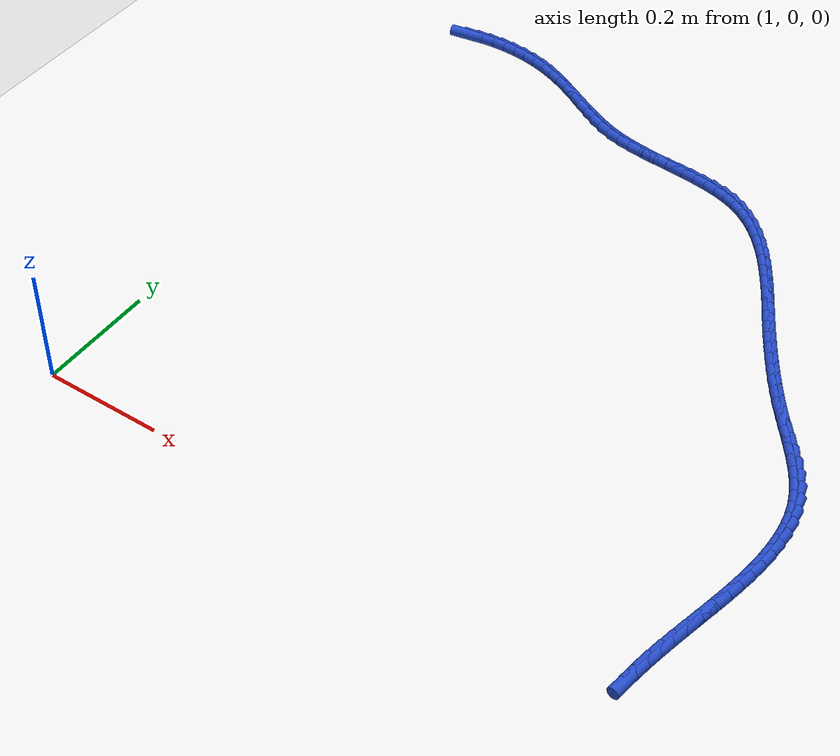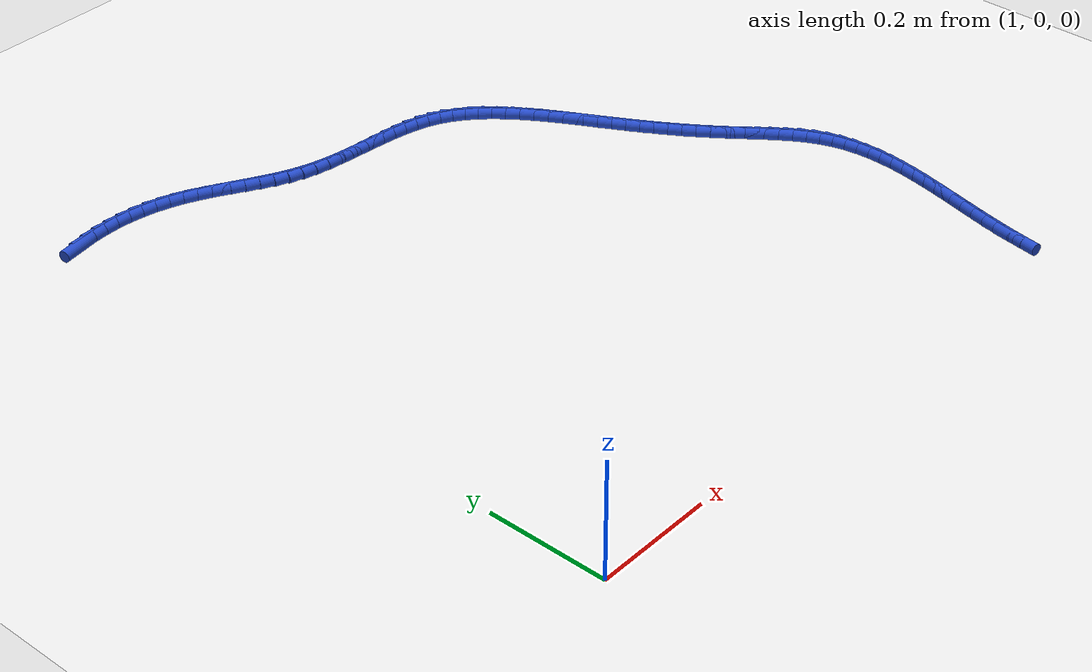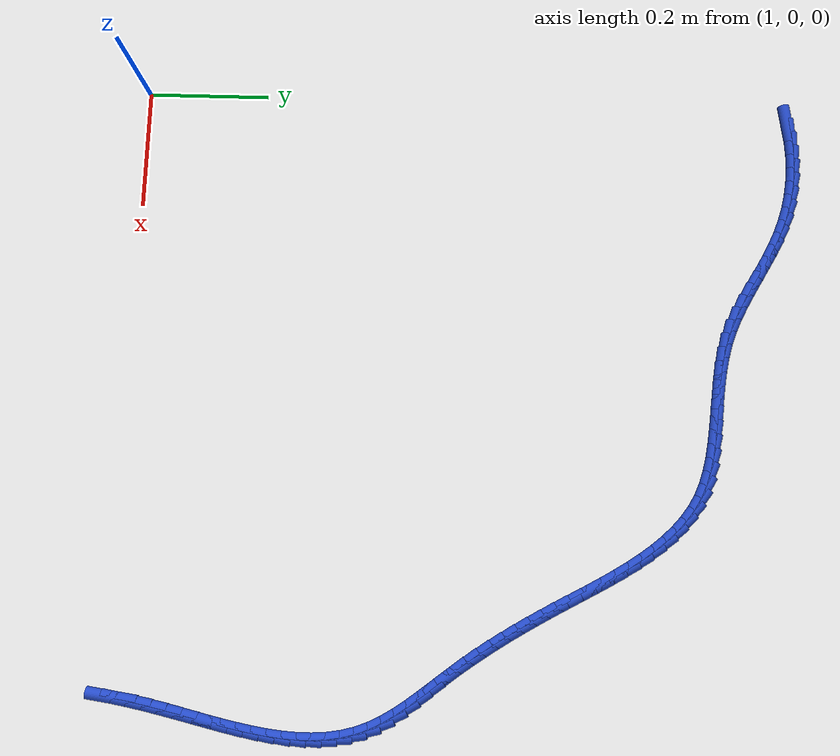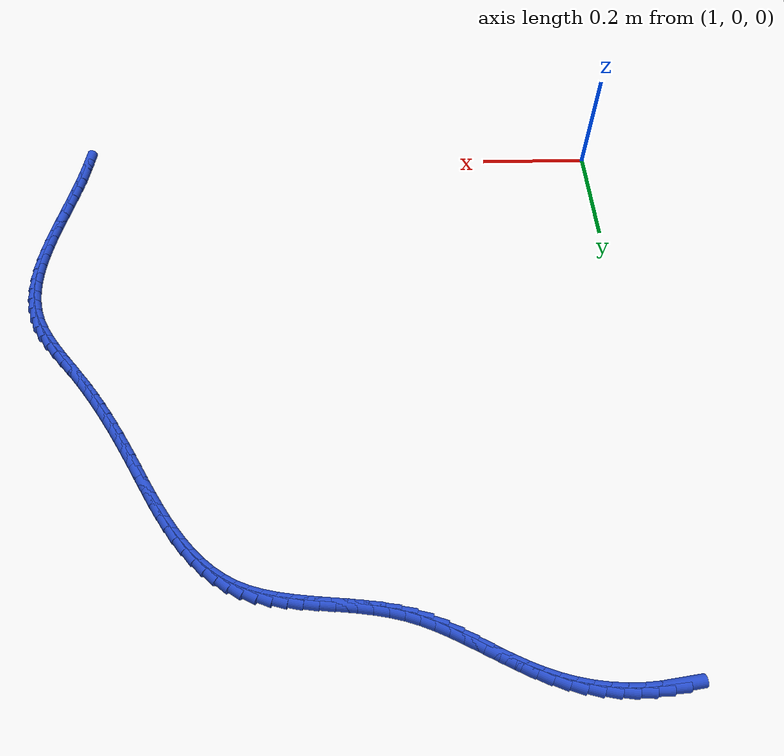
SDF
<sdf version="1.6">
 <world name="default">
  <model name="ground_plane">
   <static>1</static>
   <link name="link">
    <collision name="collision">
     <geometry><plane><normal>0 0 1</normal><size>100 100</size></plane></geometry>
     <surface><friction><ode><mu>100</mu><mu2>50</mu2></ode></friction></surface>
    </collision>
    <visual name="visual">
     <cast_shadows>0</cast_shadows>
     <geometry><plane><normal>0 0 1</normal><size>100 100</size></plane></geometry>
     <material>
      <script><uri>file://media/materials/scripts/gazebo.material</uri><name>Gazebo/WhiteGlow</name></script>
     </material>
    </visual>
   </link>
  </model>
  <model name="line">
   <link name="link_72">
    <pose>1.0402541227817694 1.0861348623821294 0.01 0 1.57 0.153829096978689</pose>
    <collision name="collision">
     <geometry><cylinder><radius>0.01</radius><length>0.08</length></cylinder></geometry>
    </collision>
    <visual name="visual">
     <material>
      <script><name>Gazebo/Blue</name><uri>file://media/materials/scripts/gazebo.material</uri></script>
     </material>
     <geometry><cylinder><radius>0.01</radius><length>0.08</length></cylinder></geometry>
    </visual>
   </link>
   <link name="link_73">
    <pose>1.0639731152185534 1.0898125885948566 0.01 0 1.57 0.07906914227122919</pose>
    <collision name="collision">
     <geometry><cylinder><radius>0.01</radius><length>0.08</length></cylinder></geometry>
    </collision>
    <visual name="visual">
     <material>
      <script><name>Gazebo/Blue</name><uri>file://media/materials/scripts/gazebo.material</uri></script>
     </material>
     <geometry><cylinder><radius>0.01</radius><length>0.08</length></cylinder></geometry>
    </visual>
   </link>
   <link name="link_74">
    <pose>1.0879583090864084 1.0917130394476604 0.01 0 1.57 0.006042839893319099</pose>
    <collision name="collision">
     <geometry><cylinder><radius>0.01</radius><length>0.08</length></cylinder></geometry>
    </collision>
    <visual name="visual">
     <material>
      <script><name>Gazebo/Blue</name><uri>file://media/materials/scripts/gazebo.material</uri></script>
     </material>
     <geometry><cylinder><radius>0.01</radius><length>0.08</length></cylinder></geometry>
    </visual>
   </link>
   <link name="link_75">
    <pose>1.1120414573615685 1.0918585718282345 0.01 0 1.57 -0.06599483840006072</pose>
    <collision name="collision">
     <geometry><cylinder><radius>0.01</radius><length>0.08</length></cylinder></geometry>
    </collision>
    <visual name="visual">
     <material>
      <script><name>Gazebo/Blue</name><uri>file://media/materials/scripts/gazebo.material</uri></script>
     </material>
     <geometry><cylinder><radius>0.01</radius><length>0.08</length></cylinder></geometry>
    </visual>
   </link>
   <link name="link_76">
    <pose>1.1360543130202665 1.090271542624271 0.01 0 1.57 -0.13780982099156985</pose>
    <collision name="collision">
     <geometry><cylinder><radius>0.01</radius><length>0.08</length></cylinder></geometry>
    </collision>
    <visual name="visual">
     <material>
      <script><name>Gazebo/Blue</name><uri>file://media/materials/scripts/gazebo.material</uri></script>
     </material>
     <geometry><cylinder><radius>0.01</radius><length>0.08</length></cylinder></geometry>
    </visual>
   </link>
   <link name="link_77">
    <pose>1.159828629038737 1.086974308723462 0.01 0 1.57 -0.2101829460826411</pose>
    <collision name="collision">
     <geometry><cylinder><radius>0.01</radius><length>0.08</length></cylinder></geometry>
    </collision>
    <visual name="visual">
     <material>
      <script><name>Gazebo/Blue</name><uri>file://media/materials/scripts/gazebo.material</uri></script>
     </material>
     <geometry><cylinder><radius>0.01</radius><length>0.08</length></cylinder></geometry>
    </visual>
   </link>
   <link name="link_78">
    <pose>1.183196158393214 1.0819892270135005 0.01 0 1.57 -0.2839057608263204</pose>
    <collision name="collision">
     <geometry><cylinder><radius>0.01</radius><length>0.08</length></cylinder></geometry>
    </collision>
    <visual name="visual">
     <material>
      <script><name>Gazebo/Blue</name><uri>file://media/materials/scripts/gazebo.material</uri></script>
     </material>
     <geometry><cylinder><radius>0.01</radius><length>0.08</length></cylinder></geometry>
    </visual>
   </link>
   <link name="link_79">
    <pose>1.20598865405993 1.075338654382079 0.01 0 1.57 -0.3580406190717034</pose>
    <collision name="collision">
     <geometry><cylinder><radius>0.01</radius><length>0.08</length></cylinder></geometry>
    </collision>
    <visual name="visual">
     <material>
      <script><name>Gazebo/Blue</name><uri>file://media/materials/scripts/gazebo.material</uri></script>
     </material>
     <geometry><cylinder><radius>0.01</radius><length>0.08</length></cylinder></geometry>
    </visual>
   </link>
   <link name="link_80">
    <pose>1.2280691721432522 1.0670768418426033 0.01 0 1.57 -0.4211189073844142</pose>
    <collision name="collision">
     <geometry><cylinder><radius>0.01</radius><length>0.08</length></cylinder></geometry>
    </collision>
    <visual name="visual">
     <material>
      <script><name>Gazebo/Blue</name><uri>file://media/materials/scripts/gazebo.material</uri></script>
     </material>
     <geometry><cylinder><radius>0.01</radius><length>0.08</length></cylinder></geometry>
    </visual>
   </link>
   <link name="link_81">
    <pose>1.2495113265857427 1.0574725735418091 0.01 0 1.57 -0.46773702625471586</pose>
    <collision name="collision">
     <geometry><cylinder><radius>0.01</radius><length>0.08</length></cylinder></geometry>
    </collision>
    <visual name="visual">
     <material>
      <script><name>Gazebo/Blue</name><uri>file://media/materials/scripts/gazebo.material</uri></script>
     </material>
     <geometry><cylinder><radius>0.01</radius><length>0.08</length></cylinder></geometry>
    </visual>
   </link>
   <link name="link_82">
    <pose>1.2704755407658477 1.046883082009273 0.01 0 1.57 -0.497673785583334</pose>
    <collision name="collision">
     <geometry><cylinder><radius>0.01</radius><length>0.08</length></cylinder></geometry>
    </collision>
    <visual name="visual">
     <material>
      <script><name>Gazebo/Blue</name><uri>file://media/materials/scripts/gazebo.material</uri></script>
     </material>
     <geometry><cylinder><radius>0.01</radius><length>0.08</length></cylinder></geometry>
    </visual>
   </link>
   <link name="link_83">
    <pose>1.2911225092737446 1.0356658761067314 0.01 0 1.57 -0.5109629152682783</pose>
    <collision name="collision">
     <geometry><cylinder><radius>0.01</radius><length>0.08</length></cylinder></geometry>
    </collision>
    <visual name="visual">
     <material>
      <script><name>Gazebo/Blue</name><uri>file://media/materials/scripts/gazebo.material</uri></script>
     </material>
     <geometry><cylinder><radius>0.01</radius><length>0.08</length></cylinder></geometry>
    </visual>
   </link>
   <link name="link_84">
    <pose>1.3116129266996104 1.0241784646959218 0.01 0 1.57 -0.5076293264700552</pose>
    <collision name="collision">
     <geometry><cylinder><radius>0.01</radius><length>0.08</length></cylinder></geometry>
    </collision>
    <visual name="visual">
     <material>
      <script><name>Gazebo/Blue</name><uri>file://media/materials/scripts/gazebo.material</uri></script>
     </material>
     <geometry><cylinder><radius>0.01</radius><length>0.08</length></cylinder></geometry>
    </visual>
   </link>
   <link name="link_85">
    <pose>1.3321074876336212 1.0127783566385806 0.01 0 1.57 -0.48757827343451365</pose>
    <collision name="collision">
     <geometry><cylinder><radius>0.01</radius><length>0.08</length></cylinder></geometry>
    </collision>
    <visual name="visual">
     <material>
      <script><name>Gazebo/Blue</name><uri>file://media/materials/scripts/gazebo.material</uri></script>
     </material>
     <geometry><cylinder><radius>0.01</radius><length>0.08</length></cylinder></geometry>
    </visual>
   </link>
   <link name="link_86">
    <pose>1.3527668866659548 1.0018230607964445 0.01 0 1.57 -0.4506217682786409</pose>
    <collision name="collision">
     <geometry><cylinder><radius>0.01</radius><length>0.08</length></cylinder></geometry>
    </collision>
    <visual name="visual">
     <material>
      <script><name>Gazebo/Blue</name><uri>file://media/materials/scripts/gazebo.material</uri></script>
     </material>
     <geometry><cylinder><radius>0.01</radius><length>0.08</length></cylinder></geometry>
    </visual>
   </link>
   <link name="link_87">
    <pose>1.373751818386788 0.9916700860312505 0.01 0 1.57 -0.3966480457385551</pose>
    <collision name="collision">
     <geometry><cylinder><radius>0.01</radius><length>0.08</length></cylinder></geometry>
    </collision>
    <visual name="visual">
     <material>
      <script><name>Gazebo/Blue</name><uri>file://media/materials/scripts/gazebo.material</uri></script>
     </material>
     <geometry><cylinder><radius>0.01</radius><length>0.08</length></cylinder></geometry>
    </visual>
   </link>
   <link name="link_88">
    <pose>1.3952229773862972 0.9826769412047351 0.01 0 1.57 -0.325944095182528</pose>
    <collision name="collision">
     <geometry><cylinder><radius>0.01</radius><length>0.08</length></cylinder></geometry>
    </collision>
    <visual name="visual">
     <material>
      <script><name>Gazebo/Blue</name><uri>file://media/materials/scripts/gazebo.material</uri></script>
     </material>
     <geometry><cylinder><radius>0.01</radius><length>0.08</length></cylinder></geometry>
    </visual>
   </link>
   <link name="link_89">
    <pose>1.4173410210244655 0.9752010563262223 0.01 0 1.57 -0.24685019395304858</pose>
    <collision name="collision">
     <geometry><cylinder><radius>0.01</radius><length>0.08</length></cylinder></geometry>
    </collision>
    <visual name="visual">
     <material>
      <script><name>Gazebo/Blue</name><uri>file://media/materials/scripts/gazebo.material</uri></script>
     </material>
     <geometry><cylinder><radius>0.01</radius><length>0.08</length></cylinder></geometry>
    </visual>
   </link>
   <link name="link_90">
    <pose>1.440192423753005 0.9694427442717521 0.01 0 1.57 -0.18250908923750309</pose>
    <collision name="collision">
     <geometry><cylinder><radius>0.01</radius><length>0.08</length></cylinder></geometry>
    </collision>
    <visual name="visual">
     <material>
      <script><name>Gazebo/Blue</name><uri>file://media/materials/scripts/gazebo.material</uri></script>
     </material>
     <geometry><cylinder><radius>0.01</radius><length>0.08</length></cylinder></geometry>
    </visual>
   </link>
   <link name="link_91">
    <pose>1.4636341711964114 0.965116267592656 0.01 0 1.57 -0.13645442018755644</pose>
    <collision name="collision">
     <geometry><cylinder><radius>0.01</radius><length>0.08</length></cylinder></geometry>
    </collision>
    <visual name="visual">
     <material>
      <script><name>Gazebo/Blue</name><uri>file://media/materials/scripts/gazebo.material</uri></script>
     </material>
     <geometry><cylinder><radius>0.01</radius><length>0.08</length></cylinder></geometry>
    </visual>
   </link>
   <link name="link_92">
    <pose>1.487479008103207 0.9618421880166028 0.01 0 1.57 -0.10768851969958602</pose>
    <collision name="collision">
     <geometry><cylinder><radius>0.01</radius><length>0.08</length></cylinder></geometry>
    </collision>
    <visual name="visual">
     <material>
      <script><name>Gazebo/Blue</name><uri>file://media/materials/scripts/gazebo.material</uri></script>
     </material>
     <geometry><cylinder><radius>0.01</radius><length>0.08</length></cylinder></geometry>
    </visual>
   </link>
   <link name="link_93">
    <pose>1.5115396792219158 0.9592410672712619 0.01 0 1.57 -0.09550236167625341</pose>
    <collision name="collision">
     <geometry><cylinder><radius>0.01</radius><length>0.08</length></cylinder></geometry>
    </collision>
    <visual name="visual">
     <material>
      <script><name>Gazebo/Blue</name><uri>file://media/materials/scripts/gazebo.material</uri></script>
     </material>
     <geometry><cylinder><radius>0.01</radius><length>0.08</length></cylinder></geometry>
    </visual>
   </link>
   <link name="link_94">
    <pose>1.5356289293010605 0.9569334670843019 0.01 0 1.57 -0.09968770600861052</pose>
    <collision name="collision">
     <geometry><cylinder><radius>0.01</radius><length>0.08</length></cylinder></geometry>
    </collision>
    <visual name="visual">
     <material>
      <script><name>Gazebo/Blue</name><uri>file://media/materials/scripts/gazebo.material</uri></script>
     </material>
     <geometry><cylinder><radius>0.01</radius><length>0.08</length></cylinder></geometry>
    </visual>
   </link>
   <link name="link_95">
    <pose>1.5595595030891651 0.9545399491833927 0.01 0 1.57 -0.1206290746074703</pose>
    <collision name="collision">
     <geometry><cylinder><radius>0.01</radius><length>0.08</length></cylinder></geometry>
    </collision>
    <visual name="visual">
     <material>
      <script><name>Gazebo/Blue</name><uri>file://media/materials/scripts/gazebo.material</uri></script>
     </material>
     <geometry><cylinder><radius>0.01</radius><length>0.08</length></cylinder></geometry>
    </visual>
   </link>
   <link name="link_96">
    <pose>1.5831441453347523 0.951681075296203 0.01 0 1.57 -0.15930808081705083</pose>
    <collision name="collision">
     <geometry><cylinder><radius>0.01</radius><length>0.08</length></cylinder></geometry>
    </collision>
    <visual name="visual">
     <material>
      <script><name>Gazebo/Blue</name><uri>file://media/materials/scripts/gazebo.material</uri></script>
     </material>
     <geometry><cylinder><radius>0.01</radius><length>0.08</length></cylinder></geometry>
    </visual>
   </link>
   <link name="link_97">
    <pose>1.6061956007863458 0.9479774071504022 0.01 0 1.57 -0.21719423526527362</pose>
    <collision name="collision">
     <geometry><cylinder><radius>0.01</radius><length>0.08</length></cylinder></geometry>
    </collision>
    <visual name="visual">
     <material>
      <script><name>Gazebo/Blue</name><uri>file://media/materials/scripts/gazebo.material</uri></script>
     </material>
     <geometry><cylinder><radius>0.01</radius><length>0.08</length></cylinder></geometry>
    </visual>
   </link>
   <link name="link_98">
    <pose>1.6285266141924686 0.9430495064736591 0.01 0 1.57 -0.2959291419163682</pose>
    <collision name="collision">
     <geometry><cylinder><radius>0.01</radius><length>0.08</length></cylinder></geometry>
    </collision>
    <visual name="visual">
     <material>
      <script><name>Gazebo/Blue</name><uri>file://media/materials/scripts/gazebo.material</uri></script>
     </material>
     <geometry><cylinder><radius>0.01</radius><length>0.08</length></cylinder></geometry>
    </visual>
   </link>
   <link name="link_99">
    <pose>1.6499499303016443 0.9365179349936434 0.01 0 1.57 -0.3966561199492416</pose>
    <collision name="collision">
     <geometry><cylinder><radius>0.01</radius><length>0.08</length></cylinder></geometry>
    </collision>
    <visual name="visual">
     <material>
      <script><name>Gazebo/Blue</name><uri>file://media/materials/scripts/gazebo.material</uri></script>
     </material>
     <geometry><cylinder><radius>0.01</radius><length>0.08</length></cylinder></geometry>
    </visual>
   </link>
   <link name="link_100">
    <pose>1.670278293862396 0.9280032544380237 0.01 0 1.57 -0.5139692183211875</pose>
    <collision name="collision">
     <geometry><cylinder><radius>0.01</radius><length>0.08</length></cylinder></geometry>
    </collision>
    <visual name="visual">
     <material>
      <script><name>Gazebo/Blue</name><uri>file://media/materials/scripts/gazebo.material</uri></script>
     </material>
     <geometry><cylinder><radius>0.01</radius><length>0.08</length></cylinder></geometry>
    </visual>
   </link>
   <link name="link_101">
    <pose>1.689371106202114 0.9172238066737255 0.01 0 1.57 -0.6248708578580492</pose>
    <collision name="collision">
     <geometry><cylinder><radius>0.01</radius><length>0.08</length></cylinder></geometry>
    </collision>
    <visual name="visual">
     <material>
      <script><name>Gazebo/Blue</name><uri>file://media/materials/scripts/gazebo.material</uri></script>
     </material>
     <geometry><cylinder><radius>0.01</radius><length>0.08</length></cylinder></geometry>
    </visual>
   </link>
   <link name="link_102">
    <pose>1.707281964471925 0.9043049178590261 0.01 0 1.57 -0.7221259078059038</pose>
    <collision name="collision">
     <geometry><cylinder><radius>0.01</radius><length>0.08</length></cylinder></geometry>
    </collision>
    <visual name="visual">
     <material>
      <script><name>Gazebo/Blue</name><uri>file://media/materials/scripts/gazebo.material</uri></script>
     </material>
     <geometry><cylinder><radius>0.01</radius><length>0.08</length></cylinder></geometry>
    </visual>
   </link>
   <link name="link_103">
    <pose>1.7241149832829792 0.8894777857012083 0.01 0 1.57 -0.8053218031197413</pose>
    <collision name="collision">
     <geometry><cylinder><radius>0.01</radius><length>0.08</length></cylinder></geometry>
    </collision>
    <visual name="visual">
     <material>
      <script><name>Gazebo/Blue</name><uri>file://media/materials/scripts/gazebo.material</uri></script>
     </material>
     <geometry><cylinder><radius>0.01</radius><length>0.08</length></cylinder></geometry>
    </visual>
   </link>
   <link name="link_104">
    <pose>1.7399742773594273 0.8729736081443802 0.01 0 1.57 -0.8750288650395213</pose>
    <collision name="collision">
     <geometry><cylinder><radius>0.01</radius><length>0.08</length></cylinder></geometry>
    </collision>
    <visual name="visual">
     <material>
      <script><name>Gazebo/Blue</name><uri>file://media/materials/scripts/gazebo.material</uri></script>
     </material>
     <geometry><cylinder><radius>0.01</radius><length>0.08</length></cylinder></geometry>
    </visual>
   </link>
   <link name="link_105">
    <pose>1.7549639614254242 0.8550235831326517 0.01 0 1.57 -0.9323003058487871</pose>
    <collision name="collision">
     <geometry><cylinder><radius>0.01</radius><length>0.08</length></cylinder></geometry>
    </collision>
    <visual name="visual">
     <material>
      <script><name>Gazebo/Blue</name><uri>file://media/materials/scripts/gazebo.material</uri></script>
     </material>
     <geometry><cylinder><radius>0.01</radius><length>0.08</length></cylinder></geometry>
    </visual>
   </link>
   <link name="link_106">
    <pose>1.7691881502051232 0.8358589086101322 0.01 0 1.57 -0.9783153644918812</pose>
    <collision name="collision">
     <geometry><cylinder><radius>0.01</radius><length>0.08</length></cylinder></geometry>
    </collision>
    <visual name="visual">
     <material>
      <script><name>Gazebo/Blue</name><uri>file://media/materials/scripts/gazebo.material</uri></script>
     </material>
     <geometry><cylinder><radius>0.01</radius><length>0.08</length></cylinder></geometry>
    </visual>
   </link>
   <link name="link_107">
    <pose>1.782750958422677 0.815710782520931 0.01 0 1.57 -1.0141672885618818</pose>
    <collision name="collision">
     <geometry><cylinder><radius>0.01</radius><length>0.08</length></cylinder></geometry>
    </collision>
    <visual name="visual">
     <material>
      <script><name>Gazebo/Blue</name><uri>file://media/materials/scripts/gazebo.material</uri></script>
     </material>
     <geometry><cylinder><radius>0.01</radius><length>0.08</length></cylinder></geometry>
    </visual>
   </link>
   <link name="link_108">
    <pose>1.7957565008022394 0.7948104028091578 0.01 0 1.57 -1.0407543531947423</pose>
    <collision name="collision">
     <geometry><cylinder><radius>0.01</radius><length>0.08</length></cylinder></geometry>
    </collision>
    <visual name="visual">
     <material>
      <script><name>Gazebo/Blue</name><uri>file://media/materials/scripts/gazebo.material</uri></script>
     </material>
     <geometry><cylinder><radius>0.01</radius><length>0.08</length></cylinder></geometry>
    </visual>
   </link>
   <link name="link_109">
    <pose>1.8083088920679635 0.773388967418921 0.01 0 1.57 -1.0587304810452551</pose>
    <collision name="collision">
     <geometry><cylinder><radius>0.01</radius><length>0.08</length></cylinder></geometry>
    </collision>
    <visual name="visual">
     <material>
      <script><name>Gazebo/Blue</name><uri>file://media/materials/scripts/gazebo.material</uri></script>
     </material>
     <geometry><cylinder><radius>0.01</radius><length>0.08</length></cylinder></geometry>
    </visual>
   </link>
   <link name="link_110">
    <pose>1.8205122469440032 0.7516776742943306 0.01 0 1.57 -1.0684837132092144</pose>
    <collision name="collision">
     <geometry><cylinder><radius>0.01</radius><length>0.08</length></cylinder></geometry>
    </collision>
    <visual name="visual">
     <material>
      <script><name>Gazebo/Blue</name><uri>file://media/materials/scripts/gazebo.material</uri></script>
     </material>
     <geometry><cylinder><radius>0.01</radius><length>0.08</length></cylinder></geometry>
    </visual>
   </link>
   <link name="link_111">
    <pose>1.8324706801545116 0.7299077213794962 0.01 0 1.57 -1.0701224405949912</pose>
    <collision name="collision">
     <geometry><cylinder><radius>0.01</radius><length>0.08</length></cylinder></geometry>
    </collision>
    <visual name="visual">
     <material>
      <script><name>Gazebo/Blue</name><uri>file://media/materials/scripts/gazebo.material</uri></script>
     </material>
     <geometry><cylinder><radius>0.01</radius><length>0.08</length></cylinder></geometry>
    </visual>
   </link>
   <link name="link_112">
    <pose>1.8442883064236413 0.7083103066185266 0.01 0 1.57 -1.0635740772984816</pose>
    <collision name="collision">
     <geometry><cylinder><radius>0.01</radius><length>0.08</length></cylinder></geometry>
    </collision>
    <visual name="visual">
     <material>
      <script><name>Gazebo/Blue</name><uri>file://media/materials/scripts/gazebo.material</uri></script>
     </material>
     <geometry><cylinder><radius>0.01</radius><length>0.08</length></cylinder></geometry>
    </visual>
   </link>
   <link name="link_113">
    <pose>1.8560686676197111 0.68711183600017 0.01 0 1.57 -1.0516775150960562</pose>
    <collision name="collision">
     <geometry><cylinder><radius>0.01</radius><length>0.08</length></cylinder></geometry>
    </collision>
    <visual name="visual">
     <material>
      <script><name>Gazebo/Blue</name><uri>file://media/materials/scripts/gazebo.material</uri></script>
     </material>
     <geometry><cylinder><radius>0.01</radius><length>0.08</length></cylinder></geometry>
    </visual>
   </link>
   <link name="link_114">
    <pose>1.8678995065158668 0.6664065556327713 0.01 0 1.57 -1.037901577808438</pose>
    <collision name="collision">
     <geometry><cylinder><radius>0.01</radius><length>0.08</length></cylinder></geometry>
    </collision>
    <visual name="visual">
     <material>
      <script><name>Gazebo/Blue</name><uri>file://media/materials/scripts/gazebo.material</uri></script>
     </material>
     <geometry><cylinder><radius>0.01</radius><length>0.08</length></cylinder></geometry>
    </visual>
   </link>
   <link name="link_115">
    <pose>1.8798511553269253 0.6461430718090917 0.01 0 1.57 -1.02251602451178</pose>
    <collision name="collision">
     <geometry><cylinder><radius>0.01</radius><length>0.08</length></cylinder></geometry>
    </collision>
    <visual name="visual">
     <material>
      <script><name>Gazebo/Blue</name><uri>file://media/materials/scripts/gazebo.material</uri></script>
     </material>
     <geometry><cylinder><radius>0.01</radius><length>0.08</length></cylinder></geometry>
    </visual>
   </link>
   <link name="link_116">
    <pose>1.8919930501658861 0.626262494904721 0.01 0 1.57 -1.0056521290560043</pose>
    <collision name="collision">
     <geometry><cylinder><radius>0.01</radius><length>0.08</length></cylinder></geometry>
    </collision>
    <visual name="visual">
     <material>
      <script><name>Gazebo/Blue</name><uri>file://media/materials/scripts/gazebo.material</uri></script>
     </material>
     <geometry><cylinder><radius>0.01</radius><length>0.08</length></cylinder></geometry>
    </visual>
   </link>
   <link name="link_117">
    <pose>1.9043946271457508 0.6067059352952503 0.01 0 1.57 -0.9874828945962667</pose>
    <collision name="collision">
     <geometry><cylinder><radius>0.01</radius><length>0.08</length></cylinder></geometry>
    </collision>
    <visual name="visual">
     <material>
      <script><name>Gazebo/Blue</name><uri>file://media/materials/scripts/gazebo.material</uri></script>
     </material>
     <geometry><cylinder><radius>0.01</radius><length>0.08</length></cylinder></geometry>
    </visual>
   </link>
   <link name="link_118">
    <pose>1.9171253223795184 0.5874145033562691 0.01 0 1.57 -0.968218039811756</pose>
    <collision name="collision">
     <geometry><cylinder><radius>0.01</radius><length>0.08</length></cylinder></geometry>
    </collision>
    <visual name="visual">
     <material>
      <script><name>Gazebo/Blue</name><uri>file://media/materials/scripts/gazebo.material</uri></script>
     </material>
     <geometry><cylinder><radius>0.01</radius><length>0.08</length></cylinder></geometry>
    </visual>
   </link>
   <link name="link_119">
    <pose>1.93025457198019 0.5683293094633681 0.01 0 1.57 -0.9480963322966613</pose>
    <collision name="collision">
     <geometry><cylinder><radius>0.01</radius><length>0.08</length></cylinder></geometry>
    </collision>
    <visual name="visual">
     <material>
      <script><name>Gazebo/Blue</name><uri>file://media/materials/scripts/gazebo.material</uri></script>
     </material>
     <geometry><cylinder><radius>0.01</radius><length>0.08</length></cylinder></geometry>
    </visual>
   </link>
   <link name="link_120">
    <pose>1.9438518120607657 0.5493914639921378 0.01 0 1.57 -0.9273928694387152</pose>
    <collision name="collision">
     <geometry><cylinder><radius>0.01</radius><length>0.08</length></cylinder></geometry>
    </collision>
    <visual name="visual">
     <material>
      <script><name>Gazebo/Blue</name><uri>file://media/materials/scripts/gazebo.material</uri></script>
     </material>
     <geometry><cylinder><radius>0.01</radius><length>0.08</length></cylinder></geometry>
    </visual>
   </link>
   <link name="link_121">
    <pose>1.9579860098498527 0.5305420324831827 0.01 0 1.57 -0.9115209345039593</pose>
    <collision name="collision">
     <geometry><cylinder><radius>0.01</radius><length>0.08</length></cylinder></geometry>
    </collision>
    <visual name="visual">
     <material>
      <script><name>Gazebo/Blue</name><uri>file://media/materials/scripts/gazebo.material</uri></script>
     </material>
     <geometry><cylinder><radius>0.01</radius><length>0.08</length></cylinder></geometry>
    </visual>
   </link>
   <link name="link_122">
    <pose>1.9725811699343685 0.5117082190690324 0.01 0 1.57 -0.9126627697735809</pose>
    <collision name="collision">
     <geometry><cylinder><radius>0.01</radius><length>0.08</length></cylinder></geometry>
    </collision>
    <visual name="visual">
     <material>
      <script><name>Gazebo/Blue</name><uri>file://media/materials/scripts/gazebo.material</uri></script>
     </material>
     <geometry><cylinder><radius>0.01</radius><length>0.08</length></cylinder></geometry>
    </visual>
   </link>
   <link name="link_123">
    <pose>1.9872119701952031 0.49278382506913504 0.01 0 1.57 -0.9325026690680306</pose>
    <collision name="collision">
     <geometry><cylinder><radius>0.01</radius><length>0.08</length></cylinder></geometry>
    </collision>
    <visual name="visual">
     <material>
      <script><name>Gazebo/Blue</name><uri>file://media/materials/scripts/gazebo.material</uri></script>
     </material>
     <geometry><cylinder><radius>0.01</radius><length>0.08</length></cylinder></geometry>
    </visual>
   </link>
   <link name="link_124">
    <pose>2.0014015294957965 0.4736577217011378 0.01 0 1.57 -0.9717591499630125</pose>
    <collision name="collision">
     <geometry><cylinder><radius>0.01</radius><length>0.08</length></cylinder></geometry>
    </collision>
    <visual name="visual">
     <material>
      <script><name>Gazebo/Blue</name><uri>file://media/materials/scripts/gazebo.material</uri></script>
     </material>
     <geometry><cylinder><radius>0.01</radius><length>0.08</length></cylinder></geometry>
    </visual>
   </link>
   <link name="link_125">
    <pose>2.0146729666995897 0.45421878018268735 0.01 0 1.57 -1.031907502796031</pose>
    <collision name="collision">
     <geometry><cylinder><radius>0.01</radius><length>0.08</length></cylinder></geometry>
    </collision>
    <visual name="visual">
     <material>
      <script><name>Gazebo/Blue</name><uri>file://media/materials/scripts/gazebo.material</uri></script>
     </material>
     <geometry><cylinder><radius>0.01</radius><length>0.08</length></cylinder></geometry>
    </visual>
   </link>
   <link name="link_126">
    <pose>2.0265494006700235 0.43435587173143114 0.01 0 1.57 -1.1148040937179708</pose>
    <collision name="collision">
     <geometry><cylinder><radius>0.01</radius><length>0.08</length></cylinder></geometry>
    </collision>
    <visual name="visual">
     <material>
      <script><name>Gazebo/Blue</name><uri>file://media/materials/scripts/gazebo.material</uri></script>
     </material>
     <geometry><cylinder><radius>0.01</radius><length>0.08</length></cylinder></geometry>
    </visual>
   </link>
   <link name="link_127">
    <pose>2.0365539502705396 0.41395786756501657 0.01 0 1.57 -1.2194800563296635</pose>
    <collision name="collision">
     <geometry><cylinder><radius>0.01</radius><length>0.08</length></cylinder></geometry>
    </collision>
    <visual name="visual">
     <material>
      <script><name>Gazebo/Blue</name><uri>file://media/materials/scripts/gazebo.material</uri></script>
     </material>
     <geometry><cylinder><radius>0.01</radius><length>0.08</length></cylinder></geometry>
    </visual>
   </link>
   <link name="link_128">
    <pose>2.044262181222296 0.3929270571324173 0.01 0 1.57 -1.3257239638642915</pose>
    <collision name="collision">
     <geometry><cylinder><radius>0.01</radius><length>0.08</length></cylinder></geometry>
    </collision>
    <visual name="visual">
     <material>
      <script><name>Gazebo/Blue</name><uri>file://media/materials/scripts/gazebo.material</uri></script>
     </material>
     <geometry><cylinder><radius>0.01</radius><length>0.08</length></cylinder></geometry>
    </visual>
   </link>
   <link name="link_129">
    <pose>2.0496773153184695 0.3712751432650708 0.01 0 1.57 -1.4217912604820024</pose>
    <collision name="collision">
     <geometry><cylinder><radius>0.01</radius><length>0.08</length></cylinder></geometry>
    </collision>
    <visual name="visual">
     <material>
      <script><name>Gazebo/Blue</name><uri>file://media/materials/scripts/gazebo.material</uri></script>
     </material>
     <geometry><cylinder><radius>0.01</radius><length>0.08</length></cylinder></geometry>
    </visual>
   </link>
   <link name="link_130">
    <pose>2.0530111232018102 0.34906718483571386 0.01 0 1.57 -1.5063154335333437</pose>
    <collision name="collision">
     <geometry><cylinder><radius>0.01</radius><length>0.08</length></cylinder></geometry>
    </collision>
    <visual name="visual">
     <material>
      <script><name>Gazebo/Blue</name><uri>file://media/materials/scripts/gazebo.material</uri></script>
     </material>
     <geometry><cylinder><radius>0.01</radius><length>0.08</length></cylinder></geometry>
    </visual>
   </link>
   <link name="link_131">
    <pose>2.0544767800823847 0.32636860006767177 0.01 0 1.57 1.562609318581002</pose>
    <collision name="collision">
     <geometry><cylinder><radius>0.01</radius><length>0.08</length></cylinder></geometry>
    </collision>
    <visual name="visual">
     <material>
      <script><name>Gazebo/Blue</name><uri>file://media/materials/scripts/gazebo.material</uri></script>
     </material>
     <geometry><cylinder><radius>0.01</radius><length>0.08</length></cylinder></geometry>
    </visual>
   </link>
   <link name="link_132">
    <pose>2.05428746117026 0.3032448071842704 0.01 0 1.57 1.501449838134191</pose>
    <collision name="collision">
     <geometry><cylinder><radius>0.01</radius><length>0.08</length></cylinder></geometry>
    </collision>
    <visual name="visual">
     <material>
      <script><name>Gazebo/Blue</name><uri>file://media/materials/scripts/gazebo.material</uri></script>
     </material>
     <geometry><cylinder><radius>0.01</radius><length>0.08</length></cylinder></geometry>
    </visual>
   </link>
   <link name="link_133">
    <pose>2.052656341675506 0.27976122440883566 0.01 0 1.57 1.4511024739051783</pose>
    <collision name="collision">
     <geometry><cylinder><radius>0.01</radius><length>0.08</length></cylinder></geometry>
    </collision>
    <visual name="visual">
     <material>
      <script><name>Gazebo/Blue</name><uri>file://media/materials/scripts/gazebo.material</uri></script>
     </material>
     <geometry><cylinder><radius>0.01</radius><length>0.08</length></cylinder></geometry>
    </visual>
   </link>
   <link name="link_134">
    <pose>2.0497965968081893 0.2559832699646925 0.01 0 1.57 1.410756818455019</pose>
    <collision name="collision">
     <geometry><cylinder><radius>0.01</radius><length>0.08</length></cylinder></geometry>
    </collision>
    <visual name="visual">
     <material>
      <script><name>Gazebo/Blue</name><uri>file://media/materials/scripts/gazebo.material</uri></script>
     </material>
     <geometry><cylinder><radius>0.01</radius><length>0.08</length></cylinder></geometry>
    </visual>
   </link>
   <link name="link_135">
    <pose>2.0459214017783784 0.23197636207516698 0.01 0 1.57 1.3796389968811857</pose>
    <collision name="collision">
     <geometry><cylinder><radius>0.01</radius><length>0.08</length></cylinder></geometry>
    </collision>
    <visual name="visual">
     <material>
      <script><name>Gazebo/Blue</name><uri>file://media/materials/scripts/gazebo.material</uri></script>
     </material>
     <geometry><cylinder><radius>0.01</radius><length>0.08</length></cylinder></geometry>
    </visual>
   </link>
   <link name="link_136">
    <pose>2.0412439317961417 0.20780591896358463 0.01 0 1.57 1.3570978217634841</pose>
    <collision name="collision">
     <geometry><cylinder><radius>0.01</radius><length>0.08</length></cylinder></geometry>
    </collision>
    <visual name="visual">
     <material>
      <script><name>Gazebo/Blue</name><uri>file://media/materials/scripts/gazebo.material</uri></script>
     </material>
     <geometry><cylinder><radius>0.01</radius><length>0.08</length></cylinder></geometry>
    </visual>
   </link>
   <link name="link_137">
    <pose>2.035977362071546 0.183537358853271 0.01 0 1.57 1.3426495541422494</pose>
    <collision name="collision">
     <geometry><cylinder><radius>0.01</radius><length>0.08</length></cylinder></geometry>
    </collision>
    <visual name="visual">
     <material>
      <script><name>Gazebo/Blue</name><uri>file://media/materials/scripts/gazebo.material</uri></script>
     </material>
     <geometry><cylinder><radius>0.01</radius><length>0.08</length></cylinder></geometry>
    </visual>
   </link>
   <link name="link_138">
    <pose>2.0303348678146595 0.15923609996755186 0.01 0 1.57 1.3359997691757408</pose>
    <collision name="collision">
     <geometry><cylinder><radius>0.01</radius><length>0.08</length></cylinder></geometry>
    </collision>
    <visual name="visual">
     <material>
      <script><name>Gazebo/Blue</name><uri>file://media/materials/scripts/gazebo.material</uri></script>
     </material>
     <geometry><cylinder><radius>0.01</radius><length>0.08</length></cylinder></geometry>
    </visual>
   </link>
   <link name="link_139">
    <pose>2.024529624235551 0.13496756052975278 0.01 0 1.57 1.3370288161661579</pose>
    <collision name="collision">
     <geometry><cylinder><radius>0.01</radius><length>0.08</length></cylinder></geometry>
    </collision>
    <visual name="visual">
     <material>
      <script><name>Gazebo/Blue</name><uri>file://media/materials/scripts/gazebo.material</uri></script>
     </material>
     <geometry><cylinder><radius>0.01</radius><length>0.08</length></cylinder></geometry>
    </visual>
   </link>
   <link name="link_140">
    <pose>2.01877402054803 0.11079663498043775 0.01 0 1.57 1.3444906256713371</pose>
    <collision name="collision">
     <geometry><cylinder><radius>0.01</radius><length>0.08</length></cylinder></geometry>
    </collision>
    <visual name="visual">
     <material>
      <script><name>Gazebo/Blue</name><uri>file://media/materials/scripts/gazebo.material</uri></script>
     </material>
     <geometry><cylinder><radius>0.01</radius><length>0.08</length></cylinder></geometry>
    </visual>
   </link>
   <link name="link_141">
    <pose>2.013239857589491 0.08676116993174186 0.01 0 1.57 1.356564276185745</pose>
    <collision name="collision">
     <geometry><cylinder><radius>0.01</radius><length>0.08</length></cylinder></geometry>
    </collision>
    <visual name="visual">
     <material>
      <script><name>Gazebo/Blue</name><uri>file://media/materials/scripts/gazebo.material</uri></script>
     </material>
     <geometry><cylinder><radius>0.01</radius><length>0.08</length></cylinder></geometry>
    </visual>
   </link>
   <link name="link_142">
    <pose>2.0080395372313964 0.06285942891362244 0.01 0 1.57 1.3732302452683502</pose>
    <collision name="collision">
     <geometry><cylinder><radius>0.01</radius><length>0.08</length></cylinder></geometry>
    </collision>
    <visual name="visual">
     <material>
      <script><name>Gazebo/Blue</name><uri>file://media/materials/scripts/gazebo.material</uri></script>
     </material>
     <geometry><cylinder><radius>0.01</radius><length>0.08</length></cylinder></geometry>
    </visual>
   </link>
   <link name="link_143">
    <pose>2.0032807413787523 0.03908653010127764 0.01 0 1.57 1.3946380821177558</pose>
    <collision name="collision">
     <geometry><cylinder><radius>0.01</radius><length>0.08</length></cylinder></geometry>
    </collision>
    <visual name="visual">
     <material>
      <script><name>Gazebo/Blue</name><uri>file://media/materials/scripts/gazebo.material</uri></script>
     </material>
     <geometry><cylinder><radius>0.01</radius><length>0.08</length></cylinder></geometry>
    </visual>
   </link>
   <link name="link_144">
    <pose>1.9990711519365643 0.015437591669905652 0.01 0 1.57 1.4209413139407228</pose>
    <collision name="collision">
     <geometry><cylinder><radius>0.01</radius><length>0.08</length></cylinder></geometry>
    </collision>
    <visual name="visual">
     <material>
      <script><name>Gazebo/Blue</name><uri>file://media/materials/scripts/gazebo.material</uri></script>
     </material>
     <geometry><cylinder><radius>0.01</radius><length>0.08</length></cylinder></geometry>
    </visual>
   </link>
  </model>
 </world>
</sdf>
